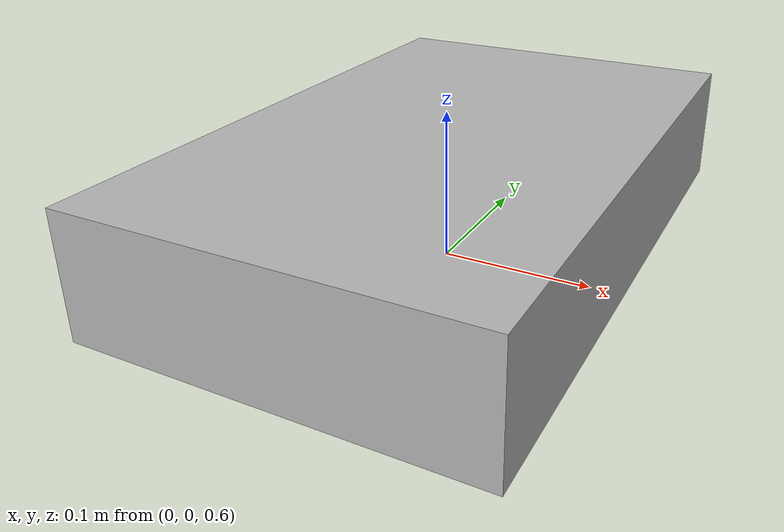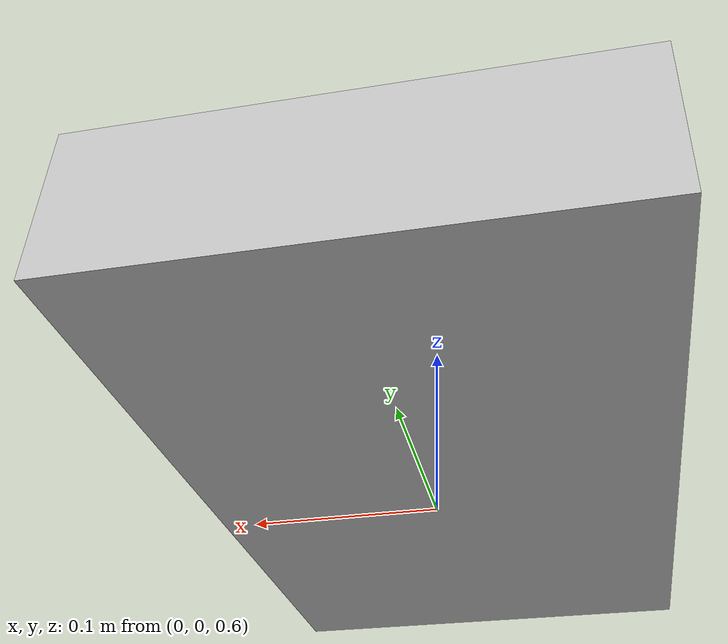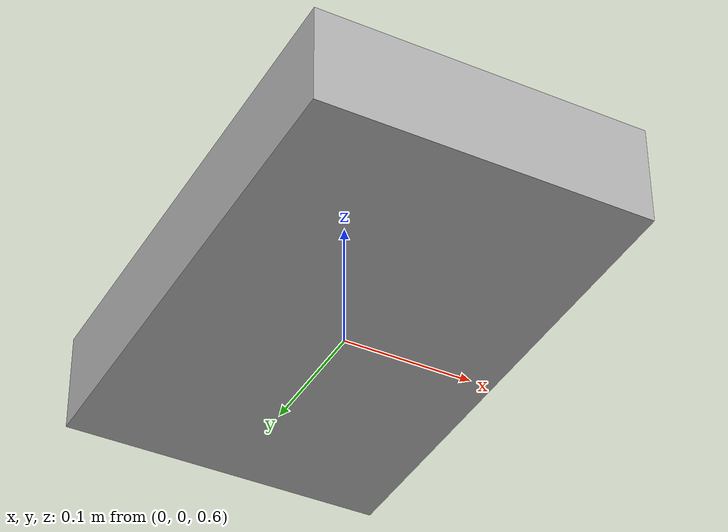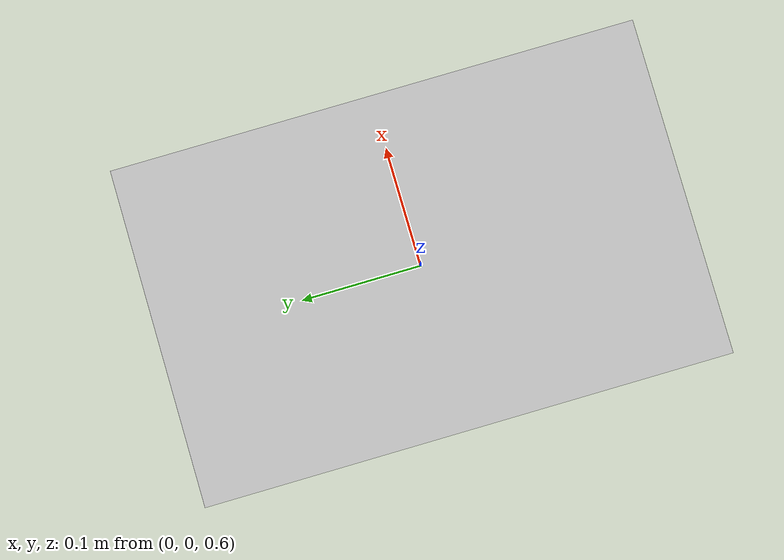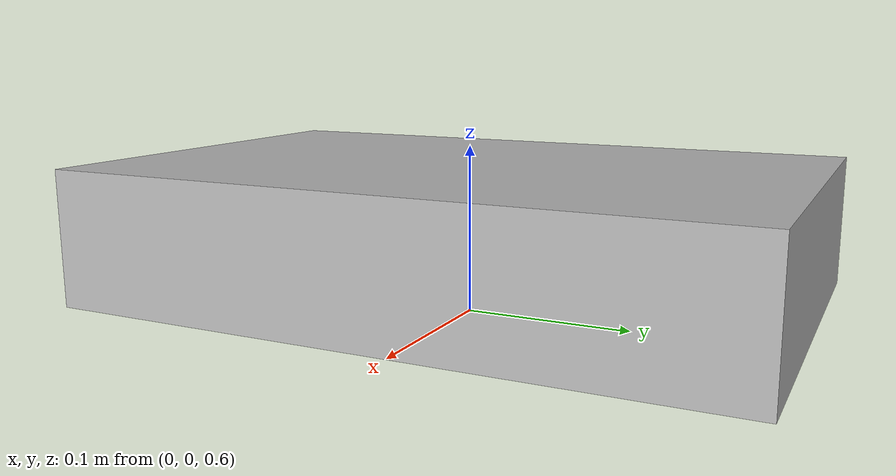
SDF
<sdf version="1.3">
<model name="zielbox">
  <pose>0 0 0.65 1.57 0.00 1.57</pose>
  <static>false</static>
    <link name="link">
      <inertial>
        <mass>1.0</mass>
        <inertia>
          <ixx>1.0</ixx>
          <ixy>0.0</ixy>
          <ixz>0.0</ixz>
          <iyy>1.0</iyy>
          <iyz>0.0</iyz>
          <izz>1.0</izz>
        </inertia>
      </inertial>
      <collision name="collision">
        <geometry>
          <box>
            <size>0.395 0.08 0.252</size>
          </box>
        </geometry>
      </collision>
      <visual name="visual">
        <geometry>
          <box>
            <size>0.395 0.08 0.252</size>
          </box>
        </geometry>

      </visual>
    </link>
  </model>
</sdf>
